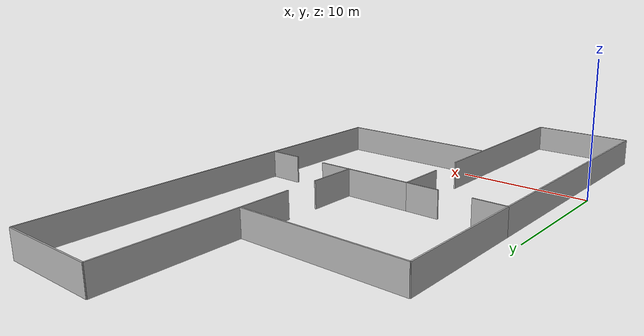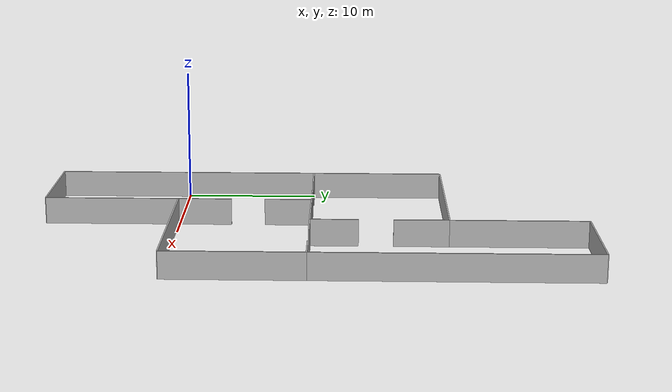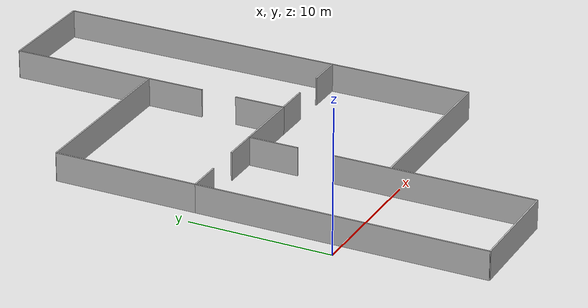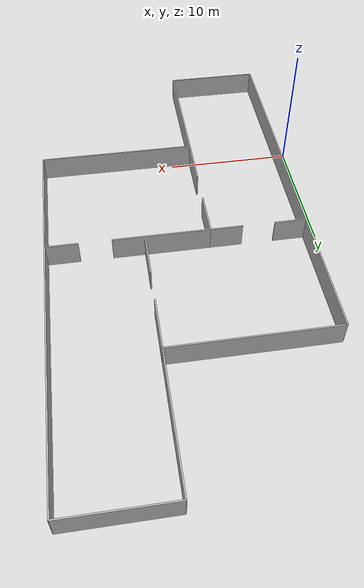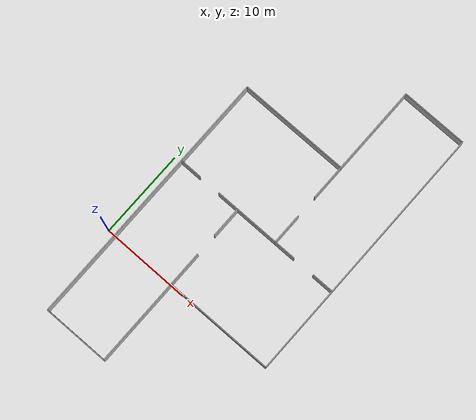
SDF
<?xml version="1.0" ?>
<sdf version="1.4">
    <model name="multi_room">
      <pose>1.0 0.0 0.2 0 0 0</pose>
      <static>true</static>
      <link name="right">
        <visual name="box_visual">
          <pose>3.75 -10 1 0 0 0</pose>
          <geometry>
          <mesh>
            <uri>model://gazebo_worlds_cdt/models/multi_room/meshes/wall_box.dae</uri>
            <scale>7.5 0.1 2</scale>
          </mesh>
          </geometry>
        </visual>
        <collision name="box_collision">
          <pose>3.75 -10 1 0 0 0</pose>
          <geometry>
            <box>
              <size>7.5 0.1 2</size>
            </box>
          </geometry>
        </collision>
      </link>
      <link name="left1">
        <visual name="box_visual">
          <pose>1.25 10 1 0 0 0</pose>
          <geometry>
          <mesh>
            <uri>model://gazebo_worlds_cdt/models/multi_room/meshes/wall_box.dae</uri>
            <scale>2.5 0.1 2</scale>
          </mesh>
          </geometry>
        </visual>
        <collision name="box_collision">
          <pose>1.25 10 1 0 0 0</pose>
          <geometry>
            <box>
              <size>2.5 0.1 2</size>
            </box>
          </geometry>
        </collision>
      </link>
      <link name="left2">
        <visual name="box_visual">
          <pose>6.25 10 1 0 0 0</pose>
          <geometry>
          <mesh>
            <uri>model://gazebo_worlds_cdt/models/multi_room/meshes/wall_box.dae</uri>
            <scale>2.5 0.1 2</scale>
          </mesh>
          </geometry>
        </visual>
        <collision name="box_collision">
          <pose>6.25 10 1 0 0 0</pose>
          <geometry>
            <box>
              <size>2.5 0.1 2</size>
            </box>
          </geometry>
        </collision>
      </link>

      <link name="bot1">
        <visual name="box_visual">
          <pose>0 0 1 0 0 0</pose>
          <geometry>
          <mesh>
            <uri>model://gazebo_worlds_cdt/models/multi_room/meshes/wall_box.dae</uri>
            <scale>0.1 20 2</scale>
          </mesh>
          </geometry>
        </visual>
        <collision name="box_collision">
          <pose>0 0 1 0 0 0</pose>
          <geometry>
            <box>
              <size>0.1 20 2</size>
            </box>
          </geometry>
        </collision>
      </link>

      <link name="top1">
        <visual name="box_visual">
          <pose>7.5 8.25 1 0 0 0</pose>
          <geometry>
          <mesh>
            <uri>model://gazebo_worlds_cdt/models/multi_room/meshes/wall_box.dae</uri>
            <scale>0.1 3.5 2</scale>
          </mesh>
          </geometry>
        </visual>
        <collision name="box_collision">
          <pose>7.5 8.25 1 0 0 0</pose>
          <geometry>
            <box>
              <size>0.1 3.5 2</size>
            </box>
          </geometry>
        </collision>
      </link>
      <link name="top2">
        <visual name="box_visual">
          <pose>7.5 -3 1 0 0 0</pose>
          <geometry>
          <mesh>
            <uri>model://gazebo_worlds_cdt/models/multi_room/meshes/wall_box.dae</uri>
            <scale>0.1 14 2</scale>
          </mesh>
          </geometry>
        </visual>
        <collision name="box_collision">
          <pose>7.5 -3 1 0 0 0</pose>
          <geometry>
            <box>
              <size>0.1 14 2</size>
            </box>
          </geometry>
        </collision>
      </link>

<!----------------- bottom left ---->
      <link name="bl_bottom1">
        <visual name="box_visual">
          <pose>0 15 1 0 0 0</pose>
          <geometry>
          <mesh>
            <uri>model://gazebo_worlds_cdt/models/multi_room/meshes/wall_box.dae</uri>
            <scale>0.1 10 2</scale>
          </mesh>
          </geometry>
        </visual>
        <collision name="box_collision">
          <pose>0 15 1 0 0 0</pose>
          <geometry>
            <box>
              <size>0.1 10 2</size>
            </box>
          </geometry>
        </collision>
      </link>

      <link name="bl_left">
        <visual name="box_visual">
          <pose>6.25 20 1 0 0 0</pose>
          <geometry>
          <mesh>
            <uri>model://gazebo_worlds_cdt/models/multi_room/meshes/wall_box.dae</uri>
            <scale>12.5 0.1 2</scale>
          </mesh>
          </geometry>
        </visual>
        <collision name="box_collision">
          <pose>6.25 20 1 0 0 0</pose>
          <geometry>
            <box>
              <size>12.5 0.1 2</size>
            </box>
          </geometry>
        </collision>
      </link>

      <link name="bl_right">
        <visual name="box_visual">
          <pose>10 10 1 0 0 0</pose>
          <geometry>
          <mesh>
            <uri>model://gazebo_worlds_cdt/models/multi_room/meshes/wall_box.dae</uri>
            <scale>5.0 0.1 2</scale>
          </mesh>
          </geometry>
        </visual>
        <collision name="box_collision">
          <pose>10 10 1 0 0 0</pose>
          <geometry>
            <box>
              <size>5.0 0.1 2</size>
            </box>
          </geometry>
        </collision>
      </link>

      <link name="bl_top1">
        <visual name="box_visual">
          <pose>12.5 11.75 1 0 0 0</pose>
          <geometry>
          <mesh>
            <uri>model://gazebo_worlds_cdt/models/multi_room/meshes/wall_box.dae</uri>
            <scale>0.1 3.5 2</scale>
          </mesh>
          </geometry>
        </visual>
        <collision name="box_collision">
          <pose>12.5 11.75 1 0 0 0</pose>
          <geometry>
            <box>
              <size>0.1 3.5 2</size>
            </box>
          </geometry>
        </collision>
      </link>

      <link name="bl_top2">
        <visual name="box_visual">
          <pose>12.5 18 1 0 0 0</pose>
          <geometry>
          <mesh>
            <uri>model://gazebo_worlds_cdt/models/multi_room/meshes/wall_box.dae</uri>
            <scale>0.1 4 2</scale>
          </mesh>
          </geometry>
        </visual>
        <collision name="box_collision">
          <pose>12.5 18 1 0 0 0</pose>
          <geometry>
            <box>
              <size>0.1 4 2</size>
            </box>
          </geometry>
        </collision>
      </link>

<!------------------------- top right -->
      <link name="tr_top1">
        <visual name="box_visual">
          <pose>20 5 1 0 0 0</pose>
          <geometry>
          <mesh>
            <uri>model://gazebo_worlds_cdt/models/multi_room/meshes/wall_box.dae</uri>
            <scale>0.1 10 2</scale>
          </mesh>
          </geometry>
        </visual>
        <collision name="box_collision">
          <pose>20 5 1 0 0 0</pose>
          <geometry>
            <box>
              <size>0.1 10 2</size>
            </box>
          </geometry>
        </collision>
      </link>

      <link name="tr_right">
        <visual name="box_visual">
          <pose>13.75 0 1 0 0 0</pose>
          <geometry>
          <mesh>
            <uri>model://gazebo_worlds_cdt/models/multi_room/meshes/wall_box.dae</uri>
            <scale>12.5 0.1 2</scale>
          </mesh>
          </geometry>
        </visual>
        <collision name="box_collision">
          <pose>13.75 0 1 0 0 0</pose>
          <geometry>
            <box>
              <size>12.5 0.1 2</size>
            </box>
          </geometry>
        </collision>
      </link>

      <link name="tr_left1">
        <visual name="box_visual">
          <pose>13.75 10 1 0 0 0</pose>
          <geometry>
          <mesh>
            <uri>model://gazebo_worlds_cdt/models/multi_room/meshes/wall_box.dae</uri>
            <scale>2.5 0.1 2</scale>
          </mesh>
          </geometry>
        </visual>
        <collision name="box_collision">
          <pose>13.75 10 1 0 0 0</pose>
          <geometry>
            <box>
              <size>2.5 0.1 2</size>
            </box>
          </geometry>
        </collision>
      </link>
      <link name="tr_left2">
        <visual name="box_visual">
          <pose>18.75 10 1 0 0 0</pose>
          <geometry>
          <mesh>
            <uri>model://gazebo_worlds_cdt/models/multi_room/meshes/wall_box.dae</uri>
            <scale>2.5 0.1 2</scale>
          </mesh>
          </geometry>
        </visual>
        <collision name="box_collision">
          <pose>18.75 10 1 0 0 0</pose>
          <geometry>
            <box>
              <size>2.5 0.1 2</size>
            </box>
          </geometry>
        </collision>
      </link>

<!------------------------- top left -->
      <link name="tl_top">
        <visual name="box_visual">
          <pose>20 20 1 0 0 0</pose>
          <geometry>
          <mesh>
            <uri>model://gazebo_worlds_cdt/models/multi_room/meshes/wall_box.dae</uri>
            <scale>0.1 20 2</scale>
          </mesh>
          </geometry>
        </visual>
        <collision name="box_collision">
          <pose>20 20 1 0 0 0</pose>
          <geometry>
            <box>
              <size>0.1 20 2</size>
            </box>
          </geometry>
        </collision>
      </link>

      <link name="tl_left">
        <visual name="box_visual">
          <pose>16.25 30 1 0 0 0</pose>
          <geometry>
          <mesh>
            <uri>model://gazebo_worlds_cdt/models/multi_room/meshes/wall_box.dae</uri>
            <scale>7.5 0.1 2</scale>
          </mesh>
          </geometry>
        </visual>
        <collision name="box_collision">
          <pose>16.25 30 1 0 0 0</pose>
          <geometry>
            <box>
              <size>7.5 0.1 2</size>
            </box>
          </geometry>
        </collision>
      </link>

      <link name="tl_bottom">
        <visual name="box_visual">
          <pose>12.5 25 1 0 0 0</pose>
          <geometry>
          <mesh>
            <uri>model://gazebo_worlds_cdt/models/multi_room/meshes/wall_box.dae</uri>
            <scale>0.1 10 2</scale>
          </mesh>
          </geometry>
        </visual>
        <collision name="box_collision">
          <pose>12.5 25 1 0 0 0</pose>
          <geometry>
            <box>
              <size>0.1 10 2</size>
            </box>
          </geometry>
        </collision>
      </link>

    </model>
</sdf>
